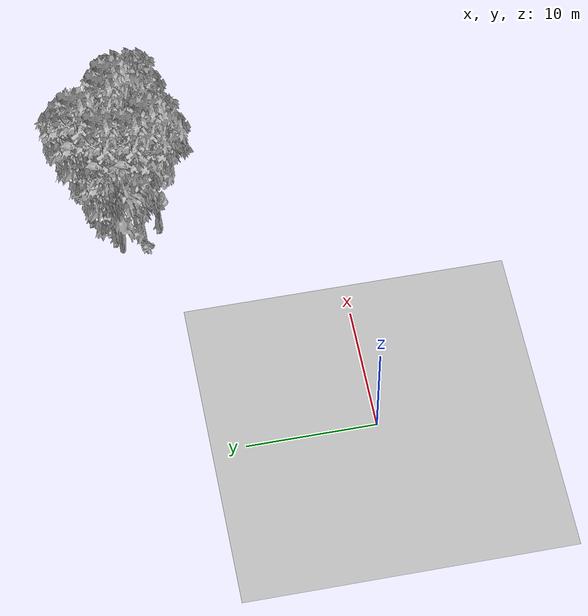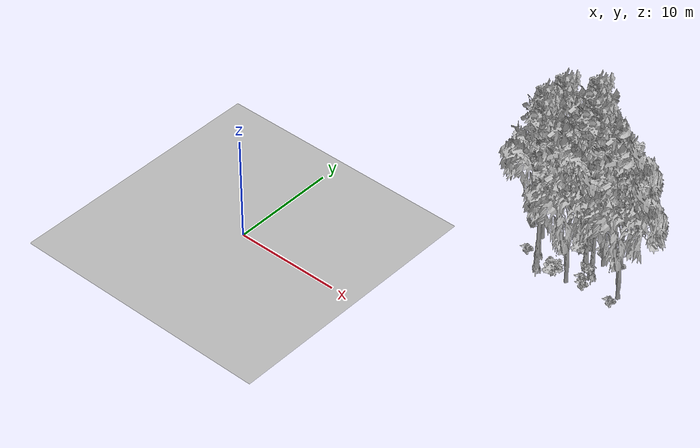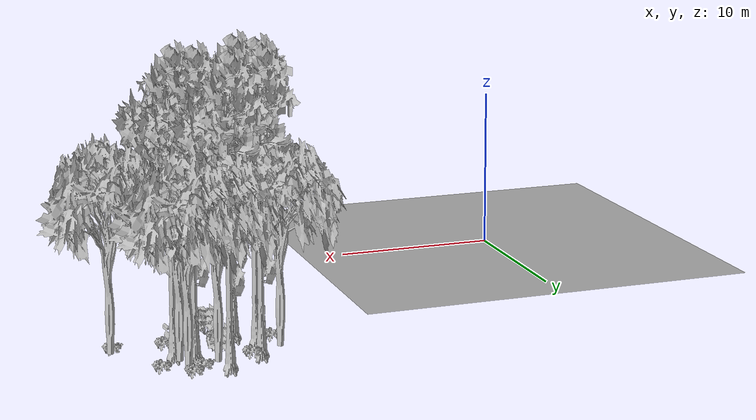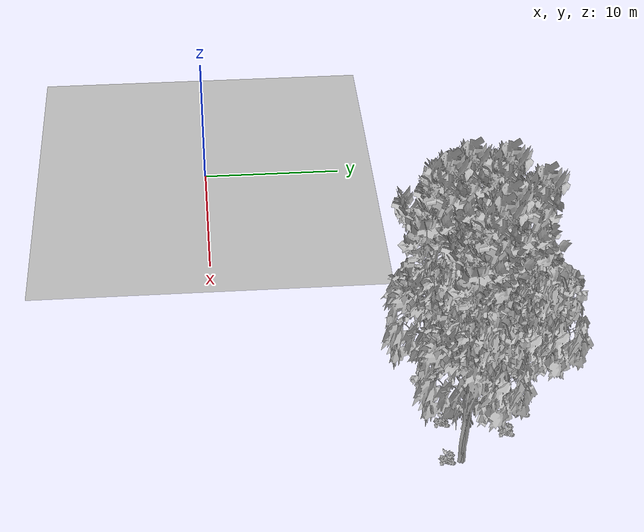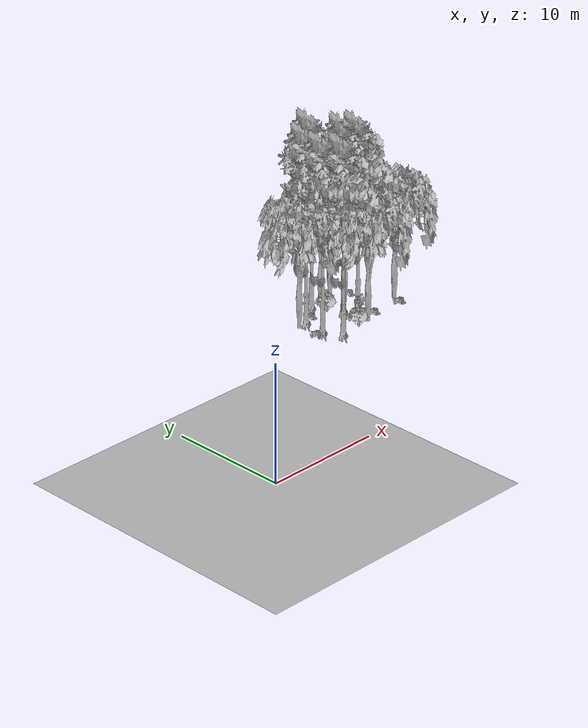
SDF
<sdf version="1.7">
 <world name="default">
  <model name="ground_plane">
   <static>1</static>
   <link name="link">
    <collision name="collision">
     <pose>-50 0 0 0 -0 0</pose>
     <geometry><plane><normal>0 0 1</normal><size>80 80</size></plane></geometry>
     <surface><contact><ode><min_depth>0.01</min_depth><max_vel>0</max_vel></ode></contact></surface>
    </collision>
    <visual name="grass">
     <cast_shadows>0</cast_shadows>
     <geometry>
      <mesh>
       <scale>0.46714285714285714 0.46714285714285714 0.1</scale>
       <uri>file://grass_plane/meshes/grass_plane.dae</uri>
      </mesh>
     </geometry>
    </visual>
   </link>
  </model>
  <model name="Tree 41">
   <static>1</static>
   <pose>24.913338707268096 15.43348912980732 0 1.57079 -0 0</pose>
   <link name="link">
    <collision name="collision">
     <geometry><mesh><scale>3.5 5 3.5</scale><uri>model://tree_9/meshes/tree_9.obj</uri></mesh></geometry>
    </collision>
    <visual name="visual">
     <geometry><mesh><scale>3.5 5 3.5</scale><uri>model://tree_9/meshes/tree_9.obj</uri></mesh></geometry>
    </visual>
   </link>
  </model>
  <model name="Tree 81">
   <static>1</static>
   <pose>24.732815240522832 18.494085965531795 0 1.57079 -0 0</pose>
   <link name="link">
    <collision name="collision">
     <geometry><mesh><scale>3.5 5 3.5</scale><uri>model://tree_2/meshes/tree_2.obj</uri></mesh></geometry>
    </collision>
    <visual name="visual">
     <geometry><mesh><scale>3.5 5 3.5</scale><uri>model://tree_2/meshes/tree_2.obj</uri></mesh></geometry>
    </visual>
   </link>
  </model>
  <model name="Tree 214">
   <static>1</static>
   <pose>24.835517575480182 16.945427235488147 0 1.57079 -0 0</pose>
   <link name="link">
    <collision name="collision">
     <geometry><mesh><scale>3.5 5 3.5</scale><uri>model://tree_2/meshes/tree_2.obj</uri></mesh></geometry>
    </collision>
    <visual name="visual">
     <geometry><mesh><scale>3.5 5 3.5</scale><uri>model://tree_2/meshes/tree_2.obj</uri></mesh></geometry>
    </visual>
   </link>
  </model>
  <model name="Tree 226">
   <static>1</static>
   <pose>28.16292544570004 14.474446222989144 0 1.57079 -0 0</pose>
   <link name="link">
    <collision name="collision">
     <geometry><mesh><scale>3.5 5 3.5</scale><uri>model://tree_2/meshes/tree_2.obj</uri></mesh></geometry>
    </collision>
    <visual name="visual">
     <geometry><mesh><scale>3.5 5 3.5</scale><uri>model://tree_2/meshes/tree_2.obj</uri></mesh></geometry>
    </visual>
   </link>
  </model>
  <model name="Tree 317">
   <static>1</static>
   <pose>18.941924125433793 16.308495055782345 0 1.57079 -0 0</pose>
   <link name="link">
    <collision name="collision">
     <geometry><mesh><scale>3.5 5 3.5</scale><uri>model://tree_2/meshes/tree_2.obj</uri></mesh></geometry>
    </collision>
    <visual name="visual">
     <geometry><mesh><scale>3.5 5 3.5</scale><uri>model://tree_2/meshes/tree_2.obj</uri></mesh></geometry>
    </visual>
   </link>
  </model>
  <model name="Tree 349">
   <static>1</static>
   <pose>22.435578761988545 18.30542994928014 0 1.57079 -0 0</pose>
   <link name="link">
    <collision name="collision">
     <geometry><mesh><scale>3.5 5 3.5</scale><uri>model://tree_9/meshes/tree_9.obj</uri></mesh></geometry>
    </collision>
    <visual name="visual">
     <geometry><mesh><scale>3.5 5 3.5</scale><uri>model://tree_9/meshes/tree_9.obj</uri></mesh></geometry>
    </visual>
   </link>
  </model>
  <model name="Tree 363">
   <static>1</static>
   <pose>20.231056543848844 16.739025665602476 0 1.57079 -0 0</pose>
   <link name="link">
    <collision name="collision">
     <geometry><mesh><scale>3.5 5 3.5</scale><uri>model://tree_9/meshes/tree_9.obj</uri></mesh></geometry>
    </collision>
    <visual name="visual">
     <geometry><mesh><scale>3.5 5 3.5</scale><uri>model://tree_9/meshes/tree_9.obj</uri></mesh></geometry>
    </visual>
   </link>
  </model>
  <model name="Tree 465">
   <static>1</static>
   <pose>22.88258319006195 17.727273867536013 0 1.57079 -0 0</pose>
   <link name="link">
    <collision name="collision">
     <geometry><mesh><scale>3.5 5 3.5</scale><uri>model://tree_2/meshes/tree_2.obj</uri></mesh></geometry>
    </collision>
    <visual name="visual">
     <geometry><mesh><scale>3.5 5 3.5</scale><uri>model://tree_2/meshes/tree_2.obj</uri></mesh></geometry>
    </visual>
   </link>
  </model>
  <model name="Tree 564">
   <static>1</static>
   <pose>23.77898301468977 13.28015432313287 0 1.57079 -0 0</pose>
   <link name="link">
    <collision name="collision">
     <geometry><mesh><scale>3.5 5 3.5</scale><uri>model://tree_2/meshes/tree_2.obj</uri></mesh></geometry>
    </collision>
    <visual name="visual">
     <geometry><mesh><scale>3.5 5 3.5</scale><uri>model://tree_2/meshes/tree_2.obj</uri></mesh></geometry>
    </visual>
   </link>
  </model>
  <model name="Tree 585">
   <static>1</static>
   <pose>19.959448108529593 14.60352078311567 0 1.57079 -0 0</pose>
   <link name="link">
    <collision name="collision">
     <geometry><mesh><scale>3.5 5 3.5</scale><uri>model://tree_9/meshes/tree_9.obj</uri></mesh></geometry>
    </collision>
    <visual name="visual">
     <geometry><mesh><scale>3.5 5 3.5</scale><uri>model://tree_9/meshes/tree_9.obj</uri></mesh></geometry>
    </visual>
   </link>
  </model>
  <model name="Tree 628">
   <static>1</static>
   <pose>23.833158098942675 16.023372680781414 0 1.57079 -0 0</pose>
   <link name="link">
    <collision name="collision">
     <geometry><mesh><scale>3.5 5 3.5</scale><uri>model://tree_9/meshes/tree_9.obj</uri></mesh></geometry>
    </collision>
    <visual name="visual">
     <geometry><mesh><scale>3.5 5 3.5</scale><uri>model://tree_9/meshes/tree_9.obj</uri></mesh></geometry>
    </visual>
   </link>
  </model>
  <model name="Tree 630">
   <static>1</static>
   <pose>20.881769195926147 13.200733740020056 0 1.57079 -0 0</pose>
   <link name="link">
    <collision name="collision">
     <geometry><mesh><scale>3.5 5 3.5</scale><uri>model://tree_9/meshes/tree_9.obj</uri></mesh></geometry>
    </collision>
    <visual name="visual">
     <geometry><mesh><scale>3.5 5 3.5</scale><uri>model://tree_9/meshes/tree_9.obj</uri></mesh></geometry>
    </visual>
   </link>
  </model>
  <model name="Bush 179">
   <static>1</static>
   <pose>28.00398903272678 13.679433658693767 0 1.57079 -0 0</pose>
   <link name="link">
    <collision name="collision">
     <geometry><mesh><scale>2 2 2</scale><uri>model://bush_2/meshes/bush_2.obj</uri></mesh></geometry>
     <surface><contact><collide_without_contact>false</collide_without_contact></contact></surface>
    </collision>
    <visual name="visual">
     <geometry><mesh><scale>2 2 2</scale><uri>model://bush_2/meshes/bush_2.obj</uri></mesh></geometry>
    </visual>
   </link>
  </model>
  <model name="Bush 186">
   <static>1</static>
   <pose>22.61977121444395 16.683192718366662 0 1.57079 -0 0</pose>
   <link name="link">
    <collision name="collision">
     <geometry><mesh><scale>2 2 2</scale><uri>model://bush_1/meshes/bush_1.obj</uri></mesh></geometry>
     <surface><contact><collide_without_contact>false</collide_without_contact></contact></surface>
    </collision>
    <visual name="visual">
     <geometry><mesh><scale>2 2 2</scale><uri>model://bush_1/meshes/bush_1.obj</uri></mesh></geometry>
    </visual>
   </link>
  </model>
  <model name="Bush 205">
   <static>1</static>
   <pose>25.077889584340618 13.81403178179994 0 1.57079 -0 0</pose>
   <link name="link">
    <collision name="collision">
     <geometry><mesh><scale>2 2 2</scale><uri>model://bush_2/meshes/bush_2.obj</uri></mesh></geometry>
     <surface><contact><collide_without_contact>false</collide_without_contact></contact></surface>
    </collision>
    <visual name="visual">
     <geometry><mesh><scale>2 2 2</scale><uri>model://bush_2/meshes/bush_2.obj</uri></mesh></geometry>
    </visual>
   </link>
  </model>
  <model name="Bush 246">
   <static>1</static>
   <pose>23.86189377875813 18.115110627855117 0 1.57079 -0 0</pose>
   <link name="link">
    <collision name="collision">
     <geometry><mesh><scale>2 2 2</scale><uri>model://bush_2/meshes/bush_2.obj</uri></mesh></geometry>
     <surface><contact><collide_without_contact>false</collide_without_contact></contact></surface>
    </collision>
    <visual name="visual">
     <geometry><mesh><scale>2 2 2</scale><uri>model://bush_2/meshes/bush_2.obj</uri></mesh></geometry>
    </visual>
   </link>
  </model>
  <model name="Bush 289">
   <static>1</static>
   <pose>20.819784295116555 16.862460702766874 0 1.57079 -0 0</pose>
   <link name="link">
    <collision name="collision">
     <geometry><mesh><scale>2 2 2</scale><uri>model://bush_2/meshes/bush_2.obj</uri></mesh></geometry>
     <surface><contact><collide_without_contact>false</collide_without_contact></contact></surface>
    </collision>
    <visual name="visual">
     <geometry><mesh><scale>2 2 2</scale><uri>model://bush_2/meshes/bush_2.obj</uri></mesh></geometry>
    </visual>
   </link>
  </model>
  <model name="Bush 290">
   <static>1</static>
   <pose>24.58327335070976 18.907882980040903 0 1.57079 -0 0</pose>
   <link name="link">
    <collision name="collision">
     <geometry><mesh><scale>2 2 2</scale><uri>model://bush_2/meshes/bush_2.obj</uri></mesh></geometry>
     <surface><contact><collide_without_contact>false</collide_without_contact></contact></surface>
    </collision>
    <visual name="visual">
     <geometry><mesh><scale>2 2 2</scale><uri>model://bush_2/meshes/bush_2.obj</uri></mesh></geometry>
    </visual>
   </link>
  </model>
  <model name="Bush 322">
   <static>1</static>
   <pose>22.52239131037014 13.006752501299232 0 1.57079 -0 0</pose>
   <link name="link">
    <collision name="collision">
     <geometry><mesh><scale>2 2 2</scale><uri>model://bush_1/meshes/bush_1.obj</uri></mesh></geometry>
     <surface><contact><collide_without_contact>false</collide_without_contact></contact></surface>
    </collision>
    <visual name="visual">
     <geometry><mesh><scale>2 2 2</scale><uri>model://bush_1/meshes/bush_1.obj</uri></mesh></geometry>
    </visual>
   </link>
  </model>
  <model name="Bush 329">
   <static>1</static>
   <pose>18.94805390130267 14.339486223637607 0 1.57079 -0 0</pose>
   <link name="link">
    <collision name="collision">
     <geometry><mesh><scale>2 2 2</scale><uri>model://bush_2/meshes/bush_2.obj</uri></mesh></geometry>
     <surface><contact><collide_without_contact>false</collide_without_contact></contact></surface>
    </collision>
    <visual name="visual">
     <geometry><mesh><scale>2 2 2</scale><uri>model://bush_2/meshes/bush_2.obj</uri></mesh></geometry>
    </visual>
   </link>
  </model>
  <model name="Bush 345">
   <static>1</static>
   <pose>24.901672128749702 14.998751065509566 0 1.57079 -0 0</pose>
   <link name="link">
    <collision name="collision">
     <geometry><mesh><scale>2 2 2</scale><uri>model://bush_0/meshes/bush_0.obj</uri></mesh></geometry>
     <surface><contact><collide_without_contact>false</collide_without_contact></contact></surface>
    </collision>
    <visual name="visual">
     <geometry><mesh><scale>2 2 2</scale><uri>model://bush_0/meshes/bush_0.obj</uri></mesh></geometry>
    </visual>
   </link>
  </model>
  <model name="Bush 404">
   <static>1</static>
   <pose>26.073221569817846 17.642069506869937 0 1.57079 -0 0</pose>
   <link name="link">
    <collision name="collision">
     <geometry><mesh><scale>2 2 2</scale><uri>model://bush_2/meshes/bush_2.obj</uri></mesh></geometry>
     <surface><contact><collide_without_contact>false</collide_without_contact></contact></surface>
    </collision>
    <visual name="visual">
     <geometry><mesh><scale>2 2 2</scale><uri>model://bush_2/meshes/bush_2.obj</uri></mesh></geometry>
    </visual>
   </link>
  </model>
  <model name="Bush 497">
   <static>1</static>
   <pose>24.557337270736404 14.410413656474638 0 1.57079 -0 0</pose>
   <link name="link">
    <collision name="collision">
     <geometry><mesh><scale>2 2 2</scale><uri>model://bush_2/meshes/bush_2.obj</uri></mesh></geometry>
     <surface><contact><collide_without_contact>false</collide_without_contact></contact></surface>
    </collision>
    <visual name="visual">
     <geometry><mesh><scale>2 2 2</scale><uri>model://bush_2/meshes/bush_2.obj</uri></mesh></geometry>
    </visual>
   </link>
  </model>
 </world>
</sdf>
